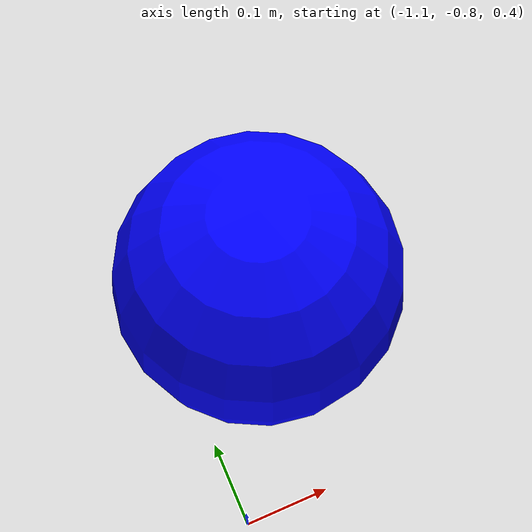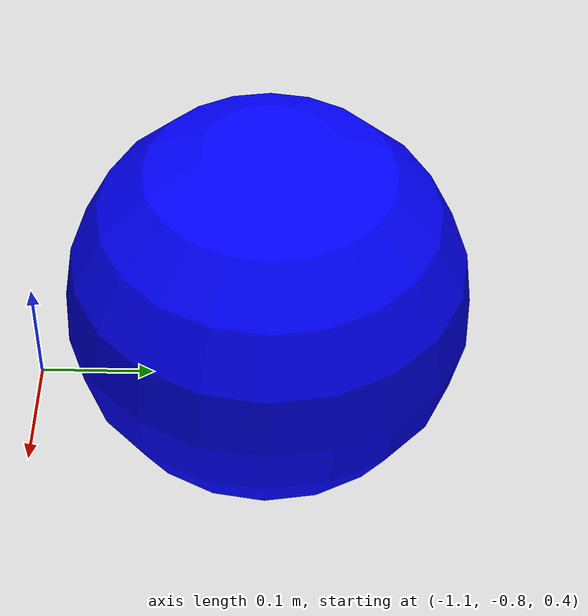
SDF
<?xml version="1.0" encoding="UTF-8"?>
<sdf version='1.4'>
  <model name='spherical_object'>
    <static>true</static>
    <pose>-1 -0.6 0.6 0 0 0</pose>
    <link name='base'>
      <visual name='base_visual'>
        <geometry>
          <sphere>
            <radius>0.15</radius>
          </sphere>
        </geometry>
        <material>
          <diffuse>0 0 1 1</diffuse>
          <specular>0.4 0.4 0.4 1</specular>
        </material>
      </visual>
    </link>
  </model>
</sdf>
